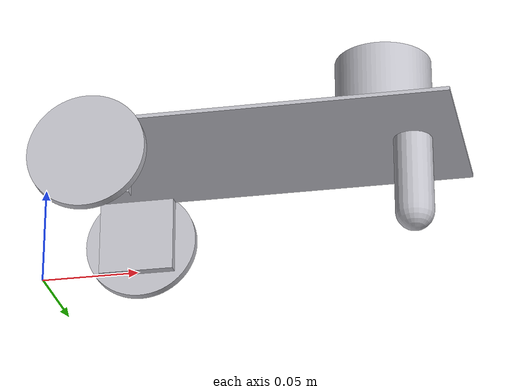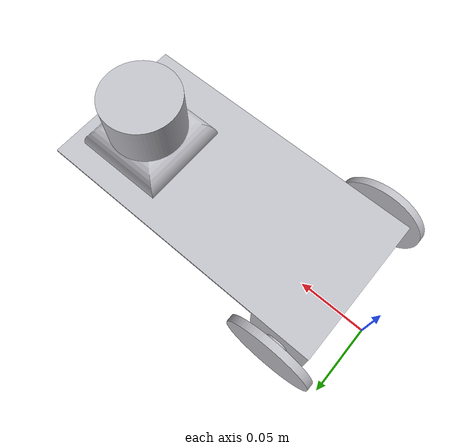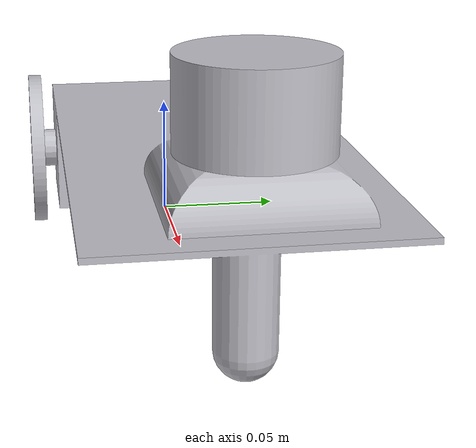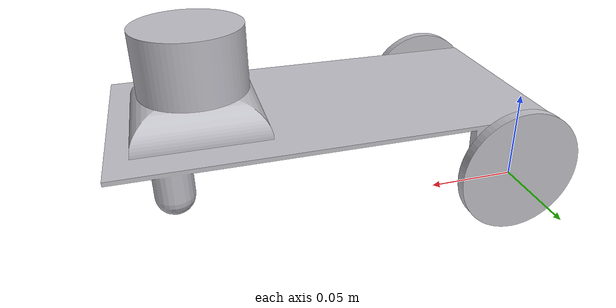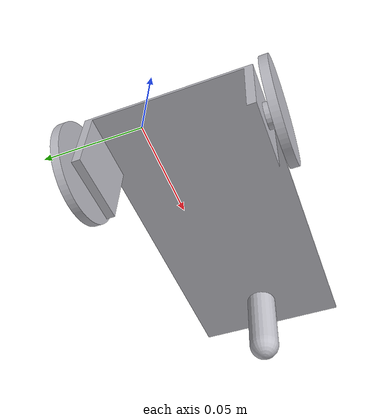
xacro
<?xml version="1.0" ?>
<robot name="task" xmlns:xacro="http://www.ros.org/wiki/xacro">

<xacro:include filename="$(find task_description)/urdf/materials.xacro" />
<xacro:include filename="$(find task_description)/urdf/task.trans" />
<xacro:include filename="$(find task_description)/urdf/task.gazebo" />
<link name="base_link">
  <inertial>
    <origin xyz="0.1482831424227566 0.0019229397683822958 0.09636789079144797" rpy="0 0 0"/>
    <mass value="0.9116492466696074"/>
    <inertia ixx="0.000862" iyy="0.003754" izz="0.004251" ixy="-6.9e-05" iyz="-1.9e-05" ixz="-0.000242"/>
  </inertial>
  <visual>
    <origin xyz="0 0 0" rpy="0 0 0"/>
    <geometry>
      <mesh filename="package://task_description/meshes/base_link.stl" scale="0.001 0.001 0.001"/>
    </geometry>
    <material name="silver"/>
  </visual>
  <collision>
    <origin xyz="0 0 0" rpy="0 0 0"/>
    <geometry>
      <mesh filename="package://task_description/meshes/base_link.stl" scale="0.001 0.001 0.001"/>
    </geometry>
  </collision>
</link>

<link name="left_wheel_1">
  <inertial>
    <origin xyz="-1.9403080283447727e-07 0.0025002394215356757 4.66085162423302e-07" rpy="0 0 0"/>
    <mass value="0.1109767604880594"/>
    <inertia ixx="2.5e-05" iyy="5e-05" izz="2.5e-05" ixy="0.0" iyz="0.0" ixz="0.0"/>
  </inertial>
  <visual>
    <origin xyz="-0.048474 -0.055041 -0.078813" rpy="0 0 0"/>
    <geometry>
      <mesh filename="package://task_description/meshes/left_wheel_1.stl" scale="0.001 0.001 0.001"/>
    </geometry>
    <material name="silver"/>
  </visual>
  <collision>
    <origin xyz="-0.048474 -0.055041 -0.078813" rpy="0 0 0"/>
    <geometry>
      <mesh filename="package://task_description/meshes/left_wheel_1.stl" scale="0.001 0.001 0.001"/>
    </geometry>
  </collision>
</link>

<link name="right_wheel_1">
  <inertial>
    <origin xyz="-1.9403080202262668e-07 -0.0024997605784628854 4.6608516260371324e-07" rpy="0 0 0"/>
    <mass value="0.11097676048805946"/>
    <inertia ixx="2.5e-05" iyy="5e-05" izz="2.5e-05" ixy="0.0" iyz="0.0" ixz="0.0"/>
  </inertial>
  <visual>
    <origin xyz="-0.048474 0.054959 -0.078813" rpy="0 0 0"/>
    <geometry>
      <mesh filename="package://task_description/meshes/right_wheel_1.stl" scale="0.001 0.001 0.001"/>
    </geometry>
    <material name="silver"/>
  </visual>
  <collision>
    <origin xyz="-0.048474 0.054959 -0.078813" rpy="0 0 0"/>
    <geometry>
      <mesh filename="package://task_description/meshes/right_wheel_1.stl" scale="0.001 0.001 0.001"/>
    </geometry>
  </collision>
</link>

<link name="liar_1">
  <inertial>
    <origin xyz="-1.9403080414592822e-07 2.3942153631363594e-07 0.015000466085162284" rpy="0 0 0"/>
    <mass value="0.46240316870024795"/>
    <inertia ixx="0.000107" iyy="0.000107" izz="0.000145" ixy="0.0" iyz="-0.0" ixz="0.0"/>
  </inertial>
  <visual>
    <origin xyz="-0.188474 -0.005041 -0.115813" rpy="0 0 0"/>
    <geometry>
      <mesh filename="package://task_description/meshes/liar_1.stl" scale="0.001 0.001 0.001"/>
    </geometry>
    <material name="silver"/>
  </visual>
  <collision>
    <origin xyz="-0.188474 -0.005041 -0.115813" rpy="0 0 0"/>
    <geometry>
      <mesh filename="package://task_description/meshes/liar_1.stl" scale="0.001 0.001 0.001"/>
    </geometry>
  </collision>
</link>

<joint name="Rev1" type="continuous">
  <origin xyz="0.048474 0.055041 0.078813" rpy="0 0 0"/>
  <parent link="base_link"/>
  <child link="left_wheel_1"/>
  <axis xyz="0.0 1.0 0.0"/>
</joint>

<joint name="Rev2" type="continuous">
  <origin xyz="0.048474 -0.054959 0.078813" rpy="0 0 0"/>
  <parent link="base_link"/>
  <child link="right_wheel_1"/>
  <axis xyz="0.0 1.0 0.0"/>
</joint>

<joint name="Rigid4" type="fixed">
  <origin xyz="0.188474 0.005041 0.115813" rpy="0 0 0"/>
  <parent link="base_link"/>
  <child link="liar_1"/>
</joint>

</robot>

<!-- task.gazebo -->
<robot name="task" xmlns:xacro="http://www.ros.org/wiki/xacro" >

<xacro:property name="body_color" value="Gazebo/Silver" />

<gazebo>
  <plugin name="control" filename="libgazebo_ros_control.so"/>
</gazebo>
<gazebo reference="base_link">
  <material>${body_color}</material>
  <mu1>3500</mu1>
  <mu2>3500</mu2>
  <selfCollide>true</selfCollide>
  <gravity>true</gravity>
</gazebo>

<gazebo reference="left_wheel_1">
  <material>${body_color}</material>
  <mu1>3500</mu1>
  <mu2>3500</mu2>
  <selfCollide>true</selfCollide>
</gazebo>

<gazebo reference="right_wheel_1">
  <material>${body_color}</material>
  <mu1>3500</mu1>
  <mu2>3500</mu2>
  <selfCollide>true</selfCollide>
</gazebo>

<gazebo reference="liar_1">
  <material>${body_color}</material>
  <mu1>0.2</mu1>
  <mu2>0.2</mu2>
  <selfCollide>true</selfCollide>
</gazebo>
  <gazebo>
  <plugin name="differential_drive_controller" filename="libgazebo_ros_diff_drive.so">

    <!-- Plugin update rate in Hz -->
    <updateRate>${update_rate}</updateRate>

    <!-- Name of left joint, defaults to `left_joint` -->
    <leftJoint>base_link_left_wheel_joint</leftJoint>

    <!-- Name of right joint, defaults to `right_joint` -->
    <rightJoint>base_link_right_wheel_joint</rightJoint>

    <!-- The distance from the center of one wheel to the other, in meters, defaults to 0.34 m -->
    <wheelSeparation>0.5380</wheelSeparation>

    <!-- Diameter of the wheels, in meters, defaults to 0.15 m -->
    <wheelDiameter>0.2410</wheelDiameter>

    <!-- Wheel acceleration, in rad/s^2, defaults to 0.0 rad/s^2 -->
    <wheelAcceleration>1.0</wheelAcceleration>

    <!-- Maximum torque which the wheels can produce, in Nm, defaults to 5 Nm -->
    <wheelTorque>20</wheelTorque>

    <!-- Topic to receive geometry_msgs/Twist message commands, defaults to `cmd_vel` -->
    <commandTopic>cmd_vel</commandTopic>

    <!-- Topic to publish nav_msgs/Odometry messages, defaults to `odom` -->
    <odometryTopic>odom</odometryTopic>

    <!-- Odometry frame, defaults to `odom` -->
    <odometryFrame>odom</odometryFrame>

    <!-- Robot frame to calculate odometry from, defaults to `base_footprint` -->
    <robotBaseFrame>base_footprint</robotBaseFrame>

    <!-- Odometry source, 0 for ENCODER, 1 for WORLD, defaults to WORLD -->
    <odometrySource>1</odometrySource>

    <!-- Set to true to publish transforms for the wheel links, defaults to false -->
    <publishWheelTF>true</publishWheelTF>

    <!-- Set to true to publish transforms for the odometry, defaults to true -->
    <publishOdom>true</publishOdom>

    <!-- Set to true to publish sensor_msgs/JointState on /joint_states for the wheel joints, defaults to false -->
    <publishWheelJointState>true</publishWheelJointState>

    <!-- Set to true to swap right and left wheels, defaults to true -->
    <legacyMode>false</legacyMode>
  </plugin>
</gazebo>

</robot>
